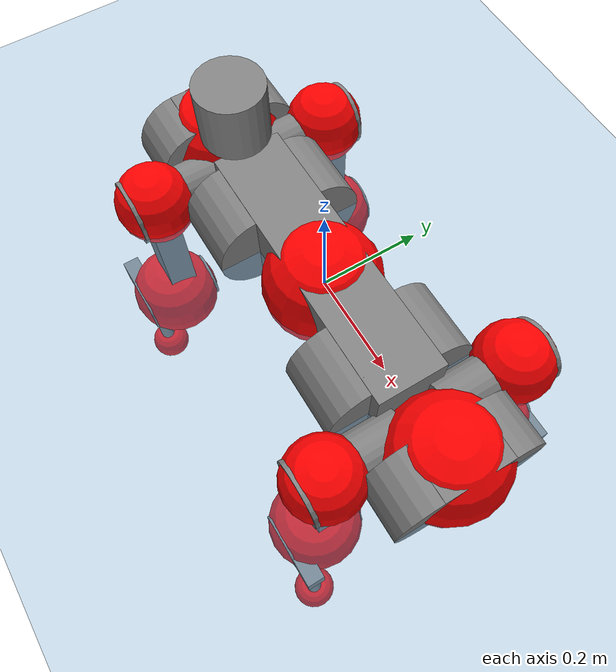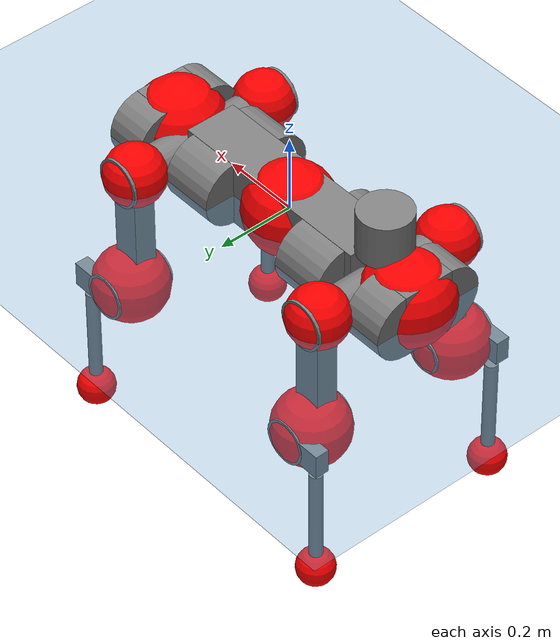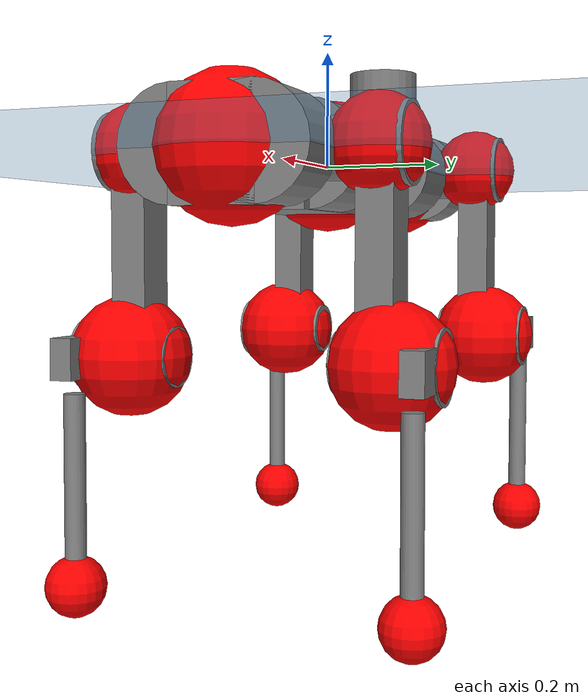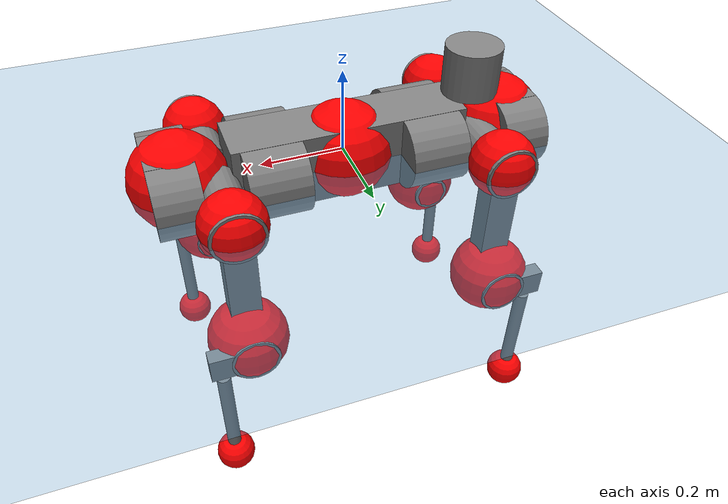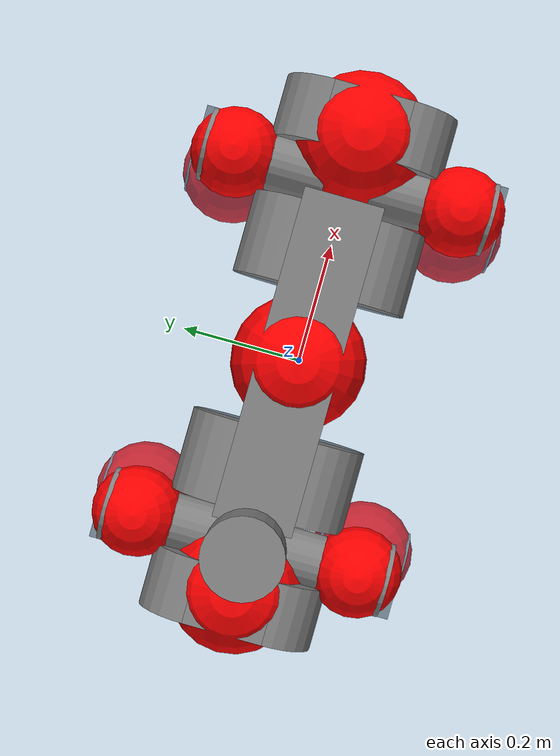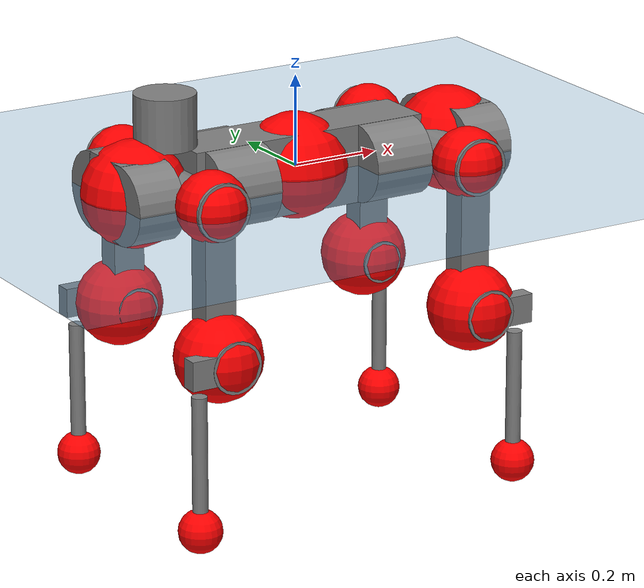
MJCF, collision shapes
<mujoco model="anymal_c">
  <compiler angle="radian" assetdir="assets" balanceinertia="true" inertiafromgeom="false"/>

  <option timestep="0.005" density="1.2" viscosity="2e-05"/>

  <size nkey="1"/>

  <visual>
    <quality shadowsize="8192"/>
    <map shadowclip="0.5"/>
  </visual>

  <default>
    <default class="/">
      <material specular="0" shininess="0.25"/>
      <geom contype="0" conaffinity="0" group="1" solref="-1000 -80"/>
      <site size="0.01 0.005 0.005" group="5"/>
      <general forcelimited="true" forcerange="-80 80" biastype="affine" gainprm="80" biasprm="0 -80 -2"/>
      <default class="anymal_c">
        <joint armature="0.01" damping="0.01" frictionloss="0.1"/>
        <default class="visual">
          <geom type="mesh" group="2"/>
          <default class="visual_zflip"/>
        </default>
        <default class="collision">
          <geom type="cylinder" group="3"/>
          <default class="foot">
            <geom size="0.03 0 0" type="sphere" condim="6" priority="1" friction="0.8 0.02 0.01" solimp="0.015 1 0.03"/>
          </default>
        </default>
      </default>
      <default class="reward_collision_sphere">
        <geom group="5" rgba="1 0 0 1"/>
      </default>
    </default>
  </default>

  <asset>
    <texture type="skybox" colorspace="auto" name="//unnamed_texture_0" builtin="gradient" rgb1="0.95 0.95 0.95" rgb2="0.95 0.95 0.95" width="100" height="600"/>
    <texture type="2d" colorspace="auto" name="texplane" builtin="checker" rgb1="0.345 0.575 0.748" rgb2="0.345 0.575 0.748" markrgb="1 1 1" width="512" height="512"/>
    <texture type="2d" colorspace="linear" name="base" file="base.png"/>
    <texture type="2d" colorspace="linear" name="top_shell" file="top_shell.png"/>
    <texture type="2d" colorspace="linear" name="bottom_shell" file="bottom_shell.png"/>
    <texture type="2d" colorspace="linear" name="remote" file="remote.png"/>
    <texture type="2d" colorspace="linear" name="hatch" file="hatch.png"/>
    <texture type="2d" colorspace="linear" name="handle" file="handle.png"/>
    <texture type="2d" colorspace="linear" name="face" file="face.png"/>
    <texture type="2d" colorspace="linear" name="battery" file="battery.png"/>
    <texture type="2d" colorspace="linear" name="lidar_cage" file="lidar_cage.png"/>
    <texture type="2d" colorspace="linear" name="depth_camera" file="depth_camera.png"/>
    <texture type="2d" colorspace="linear" name="wide_angle_camera" file="wide_angle_camera.png"/>
    <texture type="2d" colorspace="linear" name="lidar" file="lidar.png"/>
    <texture type="2d" colorspace="linear" name="drive" file="drive.png"/>
    <texture type="2d" colorspace="linear" name="hip_l" file="hip_l.png"/>
    <texture type="2d" colorspace="linear" name="shank_l" file="shank_l.png"/>
    <texture type="2d" colorspace="linear" name="foot" file="foot.png"/>
    <texture type="2d" colorspace="linear" name="thigh" file="thigh.png"/>
    <texture type="2d" colorspace="linear" name="shank_r" file="shank_r.png"/>
    <texture type="2d" colorspace="linear" name="hip_r" file="hip_r.png"/>
    <material name="MatPlane" class="/" texture="texplane" texuniform="true" texrepeat="2 2" specular="0.9" shininess="0.5"/>
    <material name="black_plastic" class="/" rgba="0.007 0.007 0.007 1"/>
    <material name="green" class="/" rgba="0.052 0.178 0.033 1"/>
    <material name="red" class="/" rgba="0.178 0.006 0.005 1"/>
    <material name="yellow" class="/" rgba="0.178 0.119 0.006 1"/>
    <material name="lwl" class="/" rgba="0.8 0.8 0.8 1"/>
    <material name="base" class="/" texture="base"/>
    <material name="top_shell" class="/" texture="top_shell"/>
    <material name="bottom_shell" class="/" texture="bottom_shell"/>
    <material name="hip_l" class="/" texture="hip_l"/>
    <material name="thigh" class="/" texture="thigh"/>
    <material name="shank_l" class="/" texture="shank_l"/>
    <material name="foot" class="/" texture="foot"/>
    <material name="hip_r" class="/" texture="hip_r"/>
    <material name="shank" class="/" texture="shank_r"/>
    <material name="hatch" class="/" texture="hatch"/>
    <material name="remote" class="/" texture="remote"/>
    <material name="handle" class="/" texture="handle"/>
    <material name="face" class="/" texture="face"/>
    <material name="depth_camera" class="/" texture="depth_camera"/>
    <material name="wide_angle_camera" class="/" texture="wide_angle_camera"/>
    <material name="battery" class="/" texture="battery"/>
    <material name="lidar_cage" class="/" texture="lidar_cage"/>
    <material name="lidar" class="/" texture="lidar"/>
    <material name="drive" class="/" texture="drive"/>
    <mesh name="base_0" class="/" file="base_0.obj"/>
    <mesh name="base_1" class="/" file="base_1.obj"/>
    <mesh name="base_2" class="/" file="base_2.obj"/>
    <mesh name="base_3" class="/" file="base_3.obj"/>
    <mesh name="base_4" class="/" file="base_4.obj"/>
    <mesh name="base_5" class="/" file="base_5.obj"/>
    <mesh name="top_shell" class="/" file="top_shell.obj"/>
    <mesh name="bottom_shell" class="/" file="bottom_shell.obj"/>
    <mesh name="remote" class="/" file="remote.obj"/>
    <mesh name="handle" class="/" file="handle.obj"/>
    <mesh name="face" class="/" file="face.obj"/>
    <mesh name="wide_angle_camera" class="/" file="wide_angle_camera.obj"/>
    <mesh name="depth_camera" class="/" file="depth_camera.obj"/>
    <mesh name="battery" class="/" file="battery.obj"/>
    <mesh name="lidar_cage" class="/" file="lidar_cage.obj"/>
    <mesh name="lidar" class="/" file="lidar.obj"/>
    <mesh name="drive" class="/" file="drive.obj"/>
    <mesh name="hip_l" class="/" file="hip_l.obj"/>
    <mesh name="thigh" class="/" file="thigh.obj"/>
    <mesh name="shank_l" class="/" file="shank_l.obj"/>
    <mesh name="foot" class="/" file="foot.obj"/>
    <mesh name="hip_r" class="/" file="hip_r.obj"/>
    <mesh name="hatch" class="/" file="hatch.obj"/>
    <mesh name="shank_r" class="/" file="shank_r.obj"/>
  </asset>

  <worldbody>
    <geom name="floor" class="/" size="100 100 0.125" type="plane" group="0" material="MatPlane"/>
    <light name="toplight_shadow" class="/" pos="0 0 5" dir="0.0990148 0.0990148 -0.990148" type="directional" ambient="0.04 0.04 0.04" diffuse="0.55 0.55 0.55" specular="0.12 0.12 0.12"/>
    <light name="toplight_fill" class="/" pos="0 0 5" dir="0.0990148 0.0990148 -0.990148" type="directional" castshadow="false" ambient="0.04 0.04 0.04" diffuse="0.3 0.3 0.3" specular="0.08 0.08 0.08"/>
    <body name="trunk" childclass="anymal_c" pos="-0.00258079 -0.0002914 0.00243966" quat="1 -0.00093611 -0.000145962 0.000274559">
      <inertial pos="0.00678479 0.00191997 0.0538845" quat="0.489714 0.504309 0.500431 0.505392" mass="16.1582" diaginertia="0.306507 0.347311 0.397485"/>
      <joint name="//unnamed_joint_0" type="free" armature="0" damping="0" frictionloss="0"/>
      <geom name="//unnamed_geom_1" class="visual" material="green" mesh="base_0"/>
      <geom name="//unnamed_geom_2" class="visual" material="yellow" mesh="base_1"/>
      <geom name="//unnamed_geom_3" class="visual" material="red" mesh="base_2"/>
      <geom name="//unnamed_geom_4" class="visual" material="black_plastic" mesh="base_3"/>
      <geom name="//unnamed_geom_5" class="visual" material="lwl" mesh="base_4"/>
      <geom name="//unnamed_geom_6" class="visual" material="base" mesh="base_5"/>
      <geom name="trunk_1" class="collision" size="0.27799 0.0671009 0.0862726" type="box"/>
      <geom name="trunk_2" class="collision" size="0.0862726 0.0694974" pos="0.188086 0.0621989 0" quat="0.707107 0 0.707107 0"/>
      <geom name="trunk_3" class="collision" size="0.0862726 0.0694974" pos="-0.188086 0.0621989 0" quat="0.707107 0 0.707107 0"/>
      <geom name="trunk_4" class="collision" size="0.0862726 0.0694974" pos="0.188086 -0.0621989 0" quat="0.707107 0 0.707107 0"/>
      <geom name="trunk_5" class="collision" size="0.0862726 0.0694974" pos="-0.188086 -0.0621989 0" quat="0.707107 0 0.707107 0"/>
      <geom name="//unnamed_geom_12" class="visual" material="top_shell" mesh="top_shell"/>
      <geom name="//unnamed_geom_13" class="visual" material="bottom_shell" mesh="bottom_shell"/>
      <geom name="//unnamed_geom_14" class="visual" material="remote" mesh="remote"/>
      <geom name="//unnamed_geom_15" class="visual" material="handle" mesh="handle"/>
      <geom name="//unnamed_geom_16" class="visual" pos="0.358444 0 0" quat="1 0 0 0" material="face" mesh="face"/>
      <geom name="trunk_6" class="collision" size="0.0527222 0.0671009 0.0862726" pos="0.406006 0 0" type="box"/>
      <geom name="//unnamed_geom_18" class="collision" size="0.0862726 0.0527222" pos="0.406006 0.0621989 0" quat="0.707107 0 0.707107 0"/>
      <geom name="//unnamed_geom_19" class="collision" size="0.0862726 0.0527222" pos="0.406006 -0.0621989 0" quat="0.707107 0 0.707107 0"/>
      <geom name="//unnamed_geom_20" class="visual" pos="0.399229 0 -0.0347334" quat="0.965926 0 0.258819 0" material="depth_camera" mesh="depth_camera"/>
      <geom name="//unnamed_geom_21" class="visual" pos="0.443624 0 0.0168029" material="wide_angle_camera" mesh="wide_angle_camera"/>
      <geom name="//unnamed_geom_22" class="visual_zflip" pos="-0.358444 0 0" quat="0 0 0 1" material="face" mesh="face"/>
      <geom name="trunk_7" class="collision" size="0.0527222 0.0671009 0.0862726" pos="-0.406006 0 0" quat="0 0 0 1" type="box"/>
      <geom name="//unnamed_geom_24" class="collision" size="0.0862726 0.0527222" pos="-0.406006 -0.0621989 0" quat="0 -0.707107 0 0.707107"/>
      <geom name="//unnamed_geom_25" class="collision" size="0.0862726 0.0527222" pos="-0.406006 0.0621989 0" quat="0 -0.707107 0 0.707107"/>
      <geom name="//unnamed_geom_26" class="visual" pos="-0.399229 0 -0.0347334" quat="0 -0.258819 0 0.965926" material="depth_camera" mesh="depth_camera"/>
      <geom name="//unnamed_geom_27" class="visual_zflip" pos="-0.443624 0 0.0168029" quat="0 0 0 1" material="wide_angle_camera" mesh="wide_angle_camera"/>
      <geom name="//unnamed_geom_28" class="visual" material="battery" mesh="battery"/>
      <geom name="//unnamed_geom_29" class="visual" pos="0 0.0682619 0.0306484" quat="0.683013 -0.183013 0.183013 0.683013" material="depth_camera" mesh="depth_camera"/>
      <geom name="//unnamed_geom_30" class="visual" pos="0 -0.0682619 0.0306484" quat="0.683013 0.183013 0.183013 -0.683013" material="depth_camera" mesh="depth_camera"/>
      <geom name="//unnamed_geom_31" class="visual" pos="-0.314774 0 0.082499" quat="1 0 0 0" material="lidar_cage" mesh="lidar_cage"/>
      <geom name="trunk_8" class="collision" size="0.0671009 0.0575151" pos="-0.314774 0 0.149845"/>
      <geom name="//unnamed_geom_33" class="visual" pos="-0.314774 9.34739e-06 0.15961" quat="0.707107 0 0 -0.707107" material="lidar" mesh="lidar"/>
      <geom name="//unnamed_geom_34" class="visual" pos="0.259342 0.0924929 -4.03445e-09" quat="0.258819 0.965926 0 0" material="drive" mesh="drive"/>
      <geom name="//unnamed_geom_35" class="visual" pos="0.259342 -0.0924929 4.03445e-09" quat="0.258819 -0.965926 0 0" material="drive" mesh="drive"/>
      <geom name="//unnamed_geom_36" class="visual" pos="-0.259342 0.0924929 4.03445e-09" quat="0 0 0.965926 -0.258819" material="drive" mesh="drive"/>
      <geom name="//unnamed_geom_37" class="visual" pos="-0.259342 -0.0924929 -4.03445e-09" quat="0 0 -0.965926 -0.258819" material="drive" mesh="drive"/>
      <geom name="//unnamed_geom_38" class="visual" pos="0.100313 0 0.0819378" quat="1 0 0 0" material="hatch" mesh="hatch"/>
      <geom name="//unnamed_geom_39" class="reward_collision_sphere" size="0.11503"/>
      <geom name="//unnamed_geom_40" class="reward_collision_sphere" size="0.11503" pos="0.389143 0 0"/>
      <geom name="//unnamed_geom_41" class="reward_collision_sphere" size="0.11503" pos="-0.389143 0 0"/>
      <site name="imu" pos="0.20072 0.00632714 0.066134" size="0.00958585"/>
      <camera name="track" pos="0 -1.77711 0" quat="0.707107 0.707107 0 0" mode="trackcom"/>
      <camera name="ego_camera" pos="0.389143 0 -0.0448974" quat="-0.5 -0.5 0.5 0.5"/>
      <body name="LF_HIP" pos="0.260084 0.0933271 -0.000640869" quat="0.258656 0.965969 0.000422939 0.000780404">
        <inertial pos="0.0486655 -0.0129623 -0.0101801" quat="-0.127237 0.710834 -0.135453 0.678364" mass="2.64147" diaginertia="0.00296723 0.00292304 0.00620256"/>
        <joint name="LF_HAA" pos="0 0 0" axis="0.99998 -0.00244711 -0.00587576" range="-0.726868 0.532063" armature="0.00964288" damping="0.012751" frictionloss="0.0942032"/>
        <geom name="//unnamed_geom_42" class="visual" pos="0 -0.000237328 3.8981e-05" quat="0.258819 -0.965926 0 0" material="hip_l" mesh="hip_l"/>
        <geom name="//unnamed_geom_43" class="visual" pos="0.0517993 -0.0631622 -0.0381966" quat="0.183013 -0.683013 0.683013 0.183013" material="drive" mesh="drive"/>
        <geom name="//unnamed_geom_44" class="collision" size="0.0479292 0.0671009" pos="0.0517993 -0.0106269 -0.00775042" quat="-0.353553 -0.612372 0.612372 -0.353553"/>
        <body name="LF_THIGH" pos="0.0507093 -0.0677006 -0.0461451" quat="0.183203 -0.683543 0.682691 0.182041">
          <inertial pos="0.027185 0.000142088 -0.274422" quat="0.99312 -0.00677286 -0.0832852 0.0820331" mass="2.6661" diaginertia="0.0143659 0.0171451 0.00758579"/>
          <joint name="LF_HFE" pos="0 0 0" axis="0.999953 -0.006089 0.00753328" stiffness="0.00155098" range="-3.18025 3.14791" armature="0.00836728" damping="0.00390951" frictionloss="0.0902367"/>
          <geom name="//unnamed_geom_45" class="visual" pos="-0.000473375 -7.45928e-07 0" quat="0.707107 0 0 -0.707107" material="thigh" mesh="thigh"/>
          <geom name="//unnamed_geom_46" class="collision" size="0.062308 0.0383434" pos="0.0345905 0 0" quat="0.5 0.5 -0.5 -0.5"/>
          <geom name="//unnamed_geom_47" class="collision" size="0.0359469 0.0287575 0.135461" pos="0.0259429 0 -0.158616" quat="0.707107 0 0 -0.707107" type="box"/>
          <geom name="//unnamed_geom_48" class="visual" pos="0.0867357 0 -0.319894" quat="1 0 0 0" material="drive" mesh="drive"/>
          <geom name="//unnamed_geom_49" class="collision" size="0.0479292 0.0671009" pos="0.0262023 0 -0.319894" quat="0.707107 0 0.707107 0"/>
          <geom name="//unnamed_geom_50" class="reward_collision_sphere" size="0.0766868" pos="0.0216191 0 0"/>
          <body name="LF_SHANK" pos="0.0866339 -0.00206219 -0.320605" quat="0.999999 -0.000406565 -0.00117061 -0.000502863">
            <inertial pos="0.00553749 -0.0518463 -0.0923446" quat="0.993236 -0.112974 -0.000520699 -0.0267952" mass="0.49838" diaginertia="0.00485948 0.00505214 0.00199711"/>
            <joint name="LF_KFE" pos="0 0 0" axis="0.999964 -0.0079037 0.00315801" stiffness="0.00862441" range="-3.13058 3.12331" armature="0.0106943" damping="0.0154278" frictionloss="0.0921218"/>
            <geom name="//unnamed_geom_51" class="visual" pos="-0.000154357 -0.000823041 0" quat="0.707107 0 0 -0.707107" material="shank_l" mesh="shank_l"/>
            <geom name="LF_kfe_act" class="collision" size="0.0575151 0.0191717" pos="0.0172953 0 0" quat="0.5 0.5 -0.5 -0.5"/>
            <geom name="//unnamed_geom_53" class="collision" size="0.0551177 0.0323522 0.0182131" pos="0.0172953 -0.0510911 0" quat="0.5 0.5 -0.5 -0.5" type="box"/>
            <geom name="//unnamed_geom_54" class="visual" pos="0.0112852 -0.0784137 -0.379349" quat="0.382683 0 0 -0.92388" material="foot" mesh="foot"/>
            <geom name="LF_calf" class="collision" size="0.0167752 0.135402" pos="0.0112852 -0.0781485 -0.189675" quat="0.707107 0 0 -0.707107"/>
            <geom name="LF_foot" class="foot" size="0.0298357" pos="0.0112852 -0.0781485 -0.354095" quat="0.707107 0 0 -0.707107"/>
            <geom name="//unnamed_geom_57" class="reward_collision_sphere" size="0.0958585" pos="-0.0432382 0 0"/>
            <geom name="//unnamed_geom_58" class="reward_collision_sphere" size="0.0479292" pos="0.0112852 -0.0781485 -0.354095"/>
            <site name="LF_foot" class="foot" pos="0.0112852 -0.0781485 -0.354095" quat="0.707107 0 0 -0.707107" size="0.00958585"/>
          </body>
        </body>
      </body>
      <body name="RF_HIP" pos="0.262572 -0.0925868 -0.00276178" quat="0.25872 -0.965952 -0.000540921 -2.55972e-05">
        <inertial pos="0.0484115 0.018486 -0.00977208" quat="0.129615 0.687482 0.141537 0.700382" mass="2.48693" diaginertia="0.00294462 0.00270285 0.00605739"/>
        <joint name="RF_HAA" pos="0 0 0" axis="0.999984 0.00184712 0.00533723" range="-0.452774 0.72677" armature="0.00895572" damping="0.011764" frictionloss="0.107146"/>
        <geom name="//unnamed_geom_59" class="visual" pos="0 0.000237326 3.89809e-05" quat="0.258819 0.965926 0 0" material="hip_r" mesh="hip_r"/>
        <geom name="//unnamed_geom_60" class="visual" pos="0.0517993 0.0631622 -0.0381966" quat="0.183013 0.683013 0.683013 -0.183013" material="drive" mesh="drive"/>
        <geom name="//unnamed_geom_61" class="collision" size="0.0479292 0.0671009" pos="0.0517993 0.0106269 -0.00775042" quat="-0.353553 0.612372 0.612372 0.353553"/>
        <body name="RF_THIGH" pos="0.0532958 0.0630397 -0.0453635" quat="0.182256 0.683346 0.68289 -0.182981">
          <inertial pos="0.0236892 -0.00263944 -0.276906" quat="0.992181 -0.00569796 -0.0847669 0.0914234" mass="2.59773" diaginertia="0.0140813 0.0163496 0.00696919"/>
          <joint name="RF_HFE" pos="0 0 0" axis="1 1.05449e-05 -2.31423e-05" stiffness="0.00380193" range="-3.09416 3.09522" armature="0.0093647" damping="0.00675691" frictionloss="0.106071"/>
          <geom name="//unnamed_geom_62" class="visual" pos="-0.000473375 -7.45928e-07 0" quat="0.707107 0 0 -0.707107" material="thigh" mesh="thigh"/>
          <geom name="//unnamed_geom_63" class="collision" size="0.062308 0.0383434" pos="0.0345905 0 0" quat="0.5 0.5 0.5 0.5"/>
          <geom name="//unnamed_geom_64" class="collision" size="0.0359469 0.0287575 0.135461" pos="0.0259429 0 -0.158616" quat="0.707107 0 0 0.707107" type="box"/>
          <geom name="//unnamed_geom_65" class="visual" pos="0.0867357 0 -0.319894" quat="1 0 0 0" material="drive" mesh="drive"/>
          <geom name="//unnamed_geom_66" class="collision" size="0.0479292 0.0671009" pos="0.0262023 0 -0.319894" quat="0.707107 0 0.707107 0"/>
          <geom name="//unnamed_geom_67" class="reward_collision_sphere" size="0.0766868" pos="0.0216191 0 0"/>
          <body name="RF_SHANK" pos="0.0854805 -0.000552752 -0.319805" quat="1 0.000230207 -0.000502435 0.000173468">
            <inertial pos="0.00542338 0.054523 -0.0903437" quat="0.99353 0.107103 0.0115847 0.0359709" mass="0.519656" diaginertia="0.0049966 0.0049433 0.00195512"/>
            <joint name="RF_KFE" pos="0 0 0" axis="0.999952 0.00559823 0.00799916" stiffness="0.0142896" range="-3.07761 3.12033" armature="0.00907085" damping="0" frictionloss="0.105212"/>
            <geom name="//unnamed_geom_68" class="visual" pos="-0.000154356 0.000823039 0" quat="0.707107 0 0 0.707107" material="shank" mesh="shank_r"/>
            <geom name="RF_kfe_act" class="collision" size="0.0575151 0.0191717" pos="0.0172953 0 0" quat="0.5 0.5 0.5 0.5"/>
            <geom name="//unnamed_geom_70" class="collision" size="0.0551177 0.0323522 0.0182131" pos="0.0172953 0.0510911 0" quat="0.5 0.5 0.5 0.5" type="box"/>
            <geom name="//unnamed_geom_71" class="visual" pos="0.0112851 0.0784137 -0.379349" quat="0.382683 0 0 0.92388" material="foot" mesh="foot"/>
            <geom name="RF_calf" class="collision" size="0.0167752 0.135402" pos="0.0112852 0.0781485 -0.189675" quat="0.707107 0 0 0.707107"/>
            <geom name="RF_foot" class="foot" size="0.0293646" pos="0.0112852 0.0781485 -0.354095" quat="0.707107 0 0 0.707107"/>
            <geom name="//unnamed_geom_74" class="reward_collision_sphere" size="0.0958585" pos="-0.0432382 0 0"/>
            <geom name="//unnamed_geom_75" class="reward_collision_sphere" size="0.0479292" pos="0.0112852 0.0781485 -0.354095"/>
            <site name="RF_foot" class="foot" pos="0.0112852 0.0781485 -0.354095" quat="0.707107 0 0 0.707107" size="0.00958585"/>
          </body>
        </body>
      </body>
      <body name="LH_HIP" pos="-0.261344 0.0926554 0.00174864" quat="-2.45456e-05 -1.79196e-05 0.965881 -0.258987">
        <inertial pos="0.0487316 0.0136795 -0.00580821" quat="0.133419 0.680181 0.1236 0.710124" mass="2.34292" diaginertia="0.00255299 0.00253379 0.00552876"/>
        <joint name="LH_HAA" pos="0 0 0" axis="0.999988 -0.00381072 -0.00322716" range="-0.480136 0.770999" armature="0.00883657" damping="0.0198387" frictionloss="0.0946845"/>
        <geom name="//unnamed_geom_76" class="visual" pos="0 0.000237326 3.89809e-05" quat="-0.258819 -0.965926 0 0" material="hip_r" mesh="hip_r"/>
        <geom name="//unnamed_geom_77" class="visual" pos="0.0517993 0.0631622 -0.0381966" quat="0.183013 0.683013 0.683013 -0.183013" material="drive" mesh="drive"/>
        <geom name="//unnamed_geom_78" class="collision" size="0.0479292 0.0671009" pos="0.0517993 0.0106269 -0.00775042" quat="-0.353553 0.612372 0.612372 0.353553"/>
        <body name="LH_THIGH" pos="0.0517893 0.06319 -0.0450748" quat="0.182159 0.682803 0.683392 -0.183231">
          <inertial pos="0.0312703 0.002399 -0.272212" quat="0.992492 -0.00763162 -0.084131 0.0884533" mass="2.62994" diaginertia="0.0153811 0.016562 0.00767259"/>
          <joint name="LH_HFE" pos="0 0 0" axis="0.999993 0.00328808 -0.00159855" range="-3.17257 3.13146" armature="0.0107502" damping="0.00762705" frictionloss="0.0953383"/>
          <geom name="//unnamed_geom_79" class="visual" pos="-0.000473375 -7.45928e-07 0" quat="0.707107 0 0 -0.707107" material="thigh" mesh="thigh"/>
          <geom name="//unnamed_geom_80" class="collision" size="0.062308 0.0383434" pos="0.0345905 0 0" quat="0.5 0.5 -0.5 -0.5"/>
          <geom name="//unnamed_geom_81" class="collision" size="0.0359469 0.0287575 0.135461" pos="0.0259429 0 -0.158616" quat="0.707107 0 0 -0.707107" type="box"/>
          <geom name="//unnamed_geom_82" class="visual" pos="0.0867357 0 -0.319894" quat="1 0 0 0" material="drive" mesh="drive"/>
          <geom name="//unnamed_geom_83" class="collision" size="0.0479292 0.0671009" pos="0.0262023 0 -0.319894" quat="0.707107 0 0.707107 0"/>
          <geom name="//unnamed_geom_84" class="reward_collision_sphere" size="0.0766868" pos="0.0216191 0 0"/>
          <body name="LH_SHANK" pos="0.0850382 0.00202016 -0.323268" quat="1 -0.000322731 0.000123683 7.75879e-05">
            <inertial pos="0.00631197 0.052334 -0.0929833" quat="0.992895 0.116919 -0.00123029 0.0221105" mass="0.48563" diaginertia="0.00460674 0.00470163 0.00193521"/>
            <joint name="LH_KFE" pos="0 0 0" axis="0.999942 -0.00588443 0.00906225" stiffness="0.00667584" range="-3.1759 3.13702" armature="0.00816706" damping="0" frictionloss="0.102234"/>
            <geom name="//unnamed_geom_85" class="visual" pos="-0.000154356 0.000823039 0" quat="-0.707107 0 0 -0.707107" material="shank" mesh="shank_r"/>
            <geom name="LH_kfe_act" class="collision" size="0.0575151 0.0191717" pos="0.0172953 0 0" quat="0.5 0.5 -0.5 -0.5"/>
            <geom name="//unnamed_geom_87" class="collision" size="0.0551177 0.0323522 0.0182131" pos="0.0172953 0.0510911 0" quat="0.5 0.5 -0.5 -0.5" type="box"/>
            <geom name="//unnamed_geom_88" class="visual" pos="0.0112851 0.0784137 -0.379349" quat="-0.382683 0 0 -0.92388" material="foot" mesh="foot"/>
            <geom name="LH_calf" class="collision" size="0.0167752 0.135402" pos="0.0112852 0.0781485 -0.189675" quat="0.707107 0 0 -0.707107"/>
            <geom name="LH_foot" class="foot" size="0.0324821" pos="0.0112852 0.0781485 -0.354095" quat="0.707107 0 0 -0.707107"/>
            <geom name="//unnamed_geom_91" class="reward_collision_sphere" size="0.0958585" pos="-0.0432382 0 0"/>
            <geom name="//unnamed_geom_92" class="reward_collision_sphere" size="0.0479292" pos="0.0112852 0.0781485 -0.354095"/>
            <site name="LH_foot" class="foot" pos="0.0112852 0.0781485 -0.354095" quat="0.707107 0 0 -0.707107" size="0.00958585"/>
          </body>
        </body>
      </body>
      <body name="RH_HIP" pos="-0.263952 -0.0909219 0.00206417" quat="0.00033039 -0.000104625 -0.966045 -0.258373">
        <inertial pos="0.048038 -0.0122741 -0.00591474" quat="-0.112618 0.709146 -0.154589 0.678624" mass="2.53842" diaginertia="0.00298079 0.00284312 0.00616594"/>
        <joint name="RH_HAA" pos="0 0 0" axis="0.999913 -0.0125723 -0.00408694" range="-0.675194 0.520242" armature="0.00846576" damping="0.00322766" frictionloss="0.0944778"/>
        <geom name="//unnamed_geom_93" class="visual" pos="0 -0.000237328 3.8981e-05" quat="-0.258819 0.965926 0 0" material="hip_l" mesh="hip_l"/>
        <geom name="//unnamed_geom_94" class="visual" pos="0.0517993 -0.0631622 -0.0381966" quat="-0.183013 0.683013 -0.683013 -0.183013" material="drive" mesh="drive"/>
        <geom name="//unnamed_geom_95" class="collision" size="0.0479292 0.0671009" pos="0.0517993 -0.0106269 -0.00775042" quat="0.353553 0.612372 -0.612372 0.353553"/>
        <body name="RH_THIGH" pos="0.0481144 -0.0622278 -0.0445061" quat="-0.183671 0.683119 -0.682706 -0.183102">
          <inertial pos="0.027075 0.00100586 -0.273083" quat="0.993205 -0.00430275 -0.0801229 0.0843006" mass="2.69776" diaginertia="0.014604 0.0162051 0.00722627"/>
          <joint name="RH_HFE" pos="0 0 0" axis="0.999926 -0.0108699 0.00555026" range="-3.12175 3.09525" armature="0.00849978" damping="0.0141214" frictionloss="0.0994495"/>
          <geom name="//unnamed_geom_96" class="visual" pos="-0.000473375 -7.45928e-07 0" quat="0.707107 0 0 -0.707107" material="thigh" mesh="thigh"/>
          <geom name="//unnamed_geom_97" class="collision" size="0.062308 0.0383434" pos="0.0345905 0 0" quat="0.5 0.5 0.5 0.5"/>
          <geom name="//unnamed_geom_98" class="collision" size="0.0359469 0.0287575 0.135461" pos="0.0259429 0 -0.158616" quat="0.707107 0 0 0.707107" type="box"/>
          <geom name="//unnamed_geom_99" class="visual" pos="0.0867357 0 -0.319894" quat="1 0 0 0" material="drive" mesh="drive"/>
          <geom name="//unnamed_geom_100" class="collision" size="0.0479292 0.0671009" pos="0.0262023 0 -0.319894" quat="0.707107 0 0.707107 0"/>
          <geom name="//unnamed_geom_101" class="reward_collision_sphere" size="0.0766868" pos="0.0216191 0 0"/>
          <body name="RH_SHANK" pos="0.0880423 -0.00119424 -0.321936" quat="0.999999 -0.000268765 0.000912533 0.00107065">
            <inertial pos="0.00359685 -0.0563547 -0.0880036" quat="0.992608 -0.118639 0.00065974 -0.0255537" mass="0.505318" diaginertia="0.00484041 0.00510925 0.00194561"/>
            <joint name="RH_KFE" pos="0 0 0" axis="0.999823 -0.00661185 0.0176373" stiffness="0.00686059" range="-3.14396 3.08981" armature="0.00967117" damping="0" frictionloss="0.105386"/>
            <geom name="//unnamed_geom_102" class="visual" pos="-0.000154357 -0.000823041 0" quat="0.707107 0 0 -0.707107" material="shank_l" mesh="shank_l"/>
            <geom name="RH_kfe_act" class="collision" size="0.0575151 0.0191717" pos="0.0172953 0 0" quat="0.5 0.5 0.5 0.5"/>
            <geom name="//unnamed_geom_104" class="collision" size="0.0551177 0.0323522 0.0182131" pos="0.0172953 -0.0510911 0" quat="0.5 0.5 0.5 0.5" type="box"/>
            <geom name="//unnamed_geom_105" class="visual" pos="0.0112852 -0.0784137 -0.379349" quat="0.382683 0 0 -0.92388" material="foot" mesh="foot"/>
            <geom name="RH_calf" class="collision" size="0.0167752 0.135402" pos="0.0112852 -0.0781485 -0.189675" quat="0.707107 0 0 0.707107"/>
            <geom name="RH_foot" class="foot" size="0.0278957" pos="0.0112852 -0.0781485 -0.354095" quat="0.707107 0 0 0.707107"/>
            <geom name="//unnamed_geom_108" class="reward_collision_sphere" size="0.0958585" pos="-0.0432382 0 0"/>
            <geom name="//unnamed_geom_109" class="reward_collision_sphere" size="0.0479292" pos="0.0112852 -0.0781485 -0.354095"/>
            <site name="RH_foot" class="foot" pos="0.0112852 -0.0781485 -0.354095" quat="0.707107 0 0 0.707107" size="0.00958585"/>
          </body>
        </body>
      </body>
    </body>
  </worldbody>

  <contact>
    <pair class="/" geom1="floor" geom2="LF_foot" name="//unnamed_contact_0"/>
    <pair class="/" geom1="floor" geom2="RF_foot" name="//unnamed_contact_1"/>
    <pair class="/" geom1="floor" geom2="LH_foot" name="//unnamed_contact_2"/>
    <pair class="/" geom1="floor" geom2="RH_foot" name="//unnamed_contact_3"/>
  </contact>

  <actuator>
    <general name="LF_HAA" class="/" joint="LF_HAA" forcerange="-78.9195 78.9195" gainprm="74.1799" biasprm="0 -74.1799 -1.8231"/>
    <general name="LF_HFE" class="/" joint="LF_HFE" forcerange="-86.3081 86.3081" gainprm="74.1799" biasprm="0 -74.1799 -1.8231"/>
    <general name="LF_KFE" class="/" joint="LF_KFE" forcerange="-69.8893 69.8893" gainprm="74.1799" biasprm="0 -74.1799 -1.8231"/>
    <general name="RF_HAA" class="/" joint="RF_HAA" forcerange="-77.9866 77.9866" gainprm="74.1799" biasprm="0 -74.1799 -1.8231"/>
    <general name="RF_HFE" class="/" joint="RF_HFE" forcerange="-77.0396 77.0396" gainprm="74.1799" biasprm="0 -74.1799 -1.8231"/>
    <general name="RF_KFE" class="/" joint="RF_KFE" forcerange="-70.2253 70.2253" gainprm="74.1799" biasprm="0 -74.1799 -1.8231"/>
    <general name="LH_HAA" class="/" joint="LH_HAA" forcerange="-77.9905 77.9905" gainprm="74.1799" biasprm="0 -74.1799 -1.8231"/>
    <general name="LH_HFE" class="/" joint="LH_HFE" forcerange="-77.7015 77.7015" gainprm="74.1799" biasprm="0 -74.1799 -1.8231"/>
    <general name="LH_KFE" class="/" joint="LH_KFE" forcerange="-84.4811 84.4811" gainprm="74.1799" biasprm="0 -74.1799 -1.8231"/>
    <general name="RH_HAA" class="/" joint="RH_HAA" forcerange="-73.678 73.678" gainprm="74.1799" biasprm="0 -74.1799 -1.8231"/>
    <general name="RH_HFE" class="/" joint="RH_HFE" forcerange="-71.6585 71.6585" gainprm="74.1799" biasprm="0 -74.1799 -1.8231"/>
    <general name="RH_KFE" class="/" joint="RH_KFE" forcerange="-84.346 84.346" gainprm="74.1799" biasprm="0 -74.1799 -1.8231"/>
  </actuator>

  <sensor>
    <gyro site="imu" name="imu_angular_velocity"/>
    <velocimeter site="imu" name="imu_linear_velocity"/>
    <framelinvel objtype="site" objname="LF_foot" name="LF_foot_global_linear_velocity"/>
    <framelinvel objtype="site" objname="RF_foot" name="RF_foot_global_linear_velocity"/>
    <framelinvel objtype="site" objname="LH_foot" name="LH_foot_global_linear_velocity"/>
    <framelinvel objtype="site" objname="RH_foot" name="RH_foot_global_linear_velocity"/>
  </sensor>

  <keyframe>
    <key name="home" qpos="0 0 0.55 1 0 0 0 0 0.4 -0.8 0 -0.4 0.8 0 -0.4 0.8 0 0.4 -0.8"/>
  </keyframe>
</mujoco>
